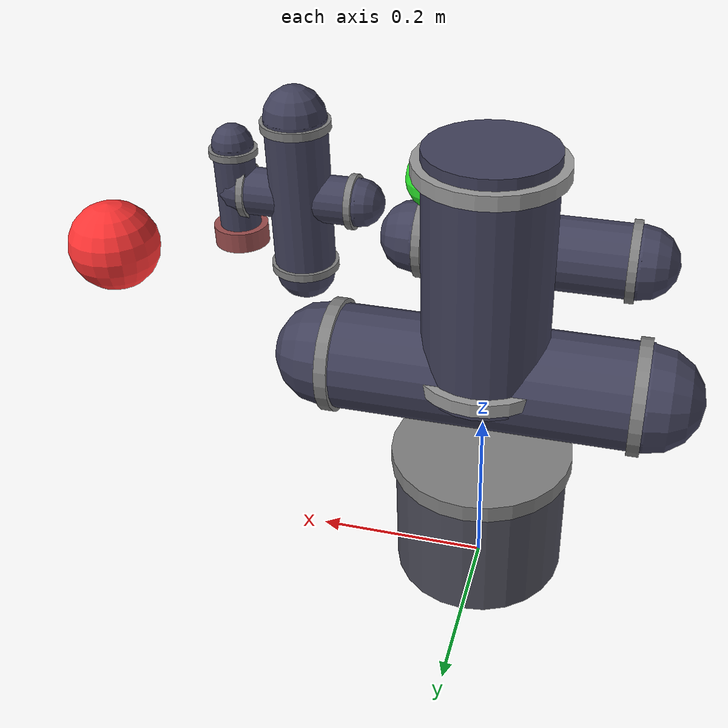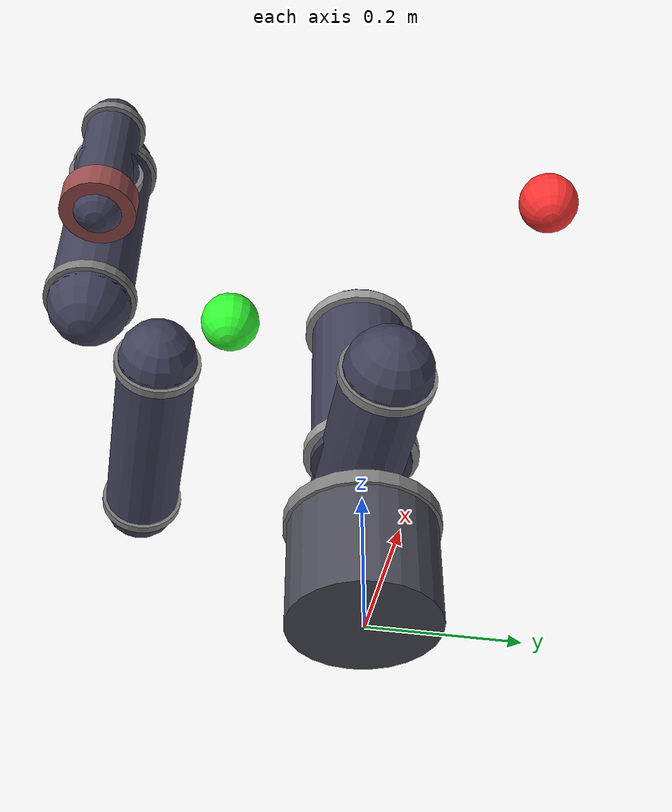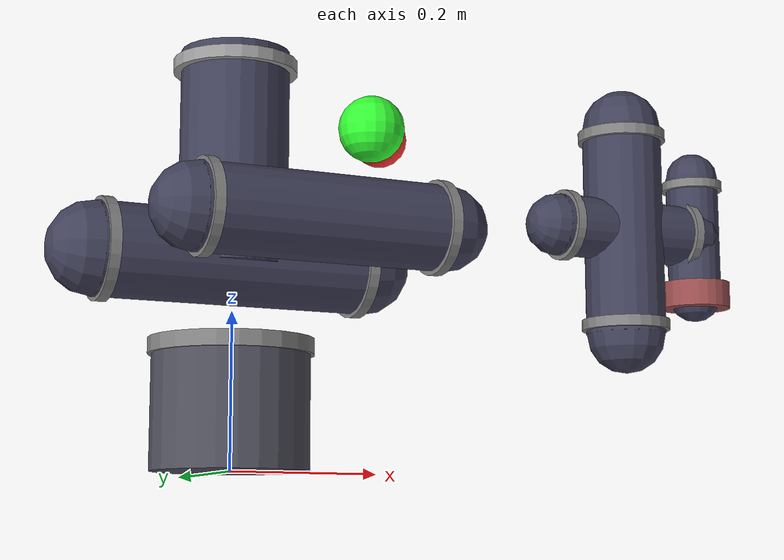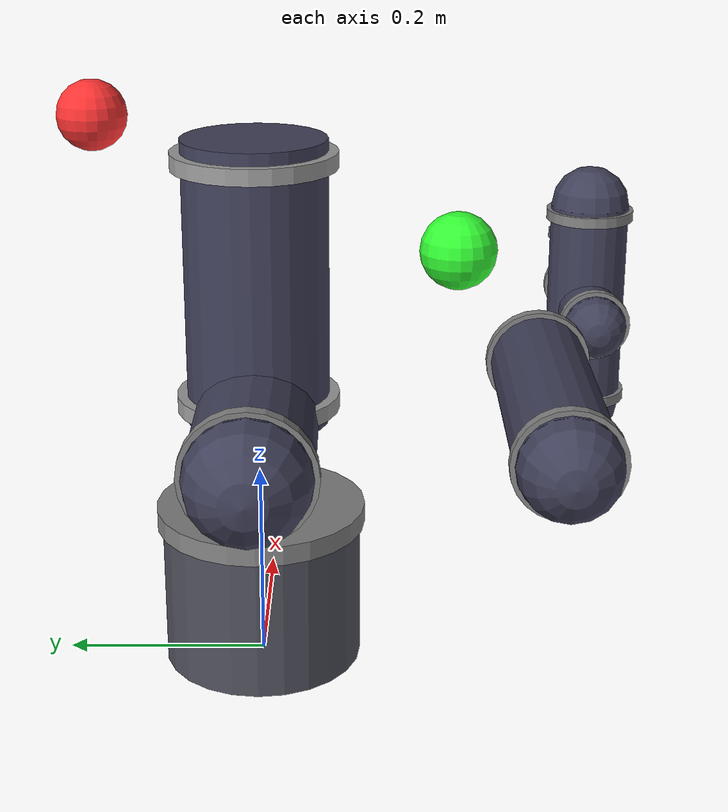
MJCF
<mujoco model="xarm6">
  <compiler angle="radian"/>
  <option gravity="0 0 -9.81" timestep="0.002"/>
  <default>
    <joint limited="true" damping="2"/>
    <position ctrllimited="true" forcerange="-50 50" kp="500"/>
  </default>
  <worldbody>
    <camera name="fixed" pos="1.2 0 1.0" xyaxes="-1 0 0 0 -0.5 1"/>
    <!-- Two colored markers (mocap bodies, repositionable) -->
    <body name="marker_red" mocap="true" pos="0.3 0.2 0.5">
      <geom type="sphere" size="0.04" rgba="1 0.2 0.2 1" contype="0" conaffinity="0"/>
    </body>
    <body name="marker_green" mocap="true" pos="0.1 -0.2 0.4">
      <geom type="sphere" size="0.04" rgba="0.2 1 0.2 1" contype="0" conaffinity="0"/>
    </body>
    <body name="base" pos="0 0 0">
      <geom type="cylinder" size="0.10 0.08" pos="0 0 0.08" rgba="0.3 0.3 0.35 1"/>
      <geom type="cylinder" size="0.105 0.01" pos="0 0 0.155" rgba="0.5 0.5 0.5 1" contype="0" conaffinity="0"/>
        <body name="j1_rotor" pos="0 0 0">
          <joint name="joint1" type="hinge" axis="0 0 1" range="-6.2832 6.2832"/>
          <body name="link1" pos="0.000000 0.000000 0.267000" euler="-0.000000 0.000000 -0.000000">
            <geom type="cylinder" size="0.07 0.14" pos="0 0 0.13" rgba="0.25 0.25 0.35 1"/>
            <geom type="cylinder" size="0.08 0.008" pos="0 0 0.01" rgba="0.6 0.6 0.6 1" contype="0" conaffinity="0"/>
            <geom type="cylinder" size="0.08 0.008" pos="0 0 0.25" rgba="0.6 0.6 0.6 1" contype="0" conaffinity="0"/>
            <body name="j2_rotor" pos="0 0 0">
              <joint name="joint2" type="hinge" axis="0 0 1" range="-2.2515 2.2515"/>
              <body name="link2" pos="0.000000 0.000000 0.000000" euler="0.000000 1.570796 -1.570796">
                <geom type="capsule" size="0.06 0.18" pos="0 0 0.0" rgba="0.25 0.25 0.35 1"/>
                <geom type="cylinder" size="0.065 0.007" pos="0 0 -0.17" rgba="0.5 0.5 0.5 1" contype="0" conaffinity="0"/>
                <geom type="cylinder" size="0.065 0.007" pos="0 0 0.17" rgba="0.5 0.5 0.5 1" contype="0" conaffinity="0"/>
                <body name="j3_rotor" pos="0 0 0">
                  <joint name="joint3" type="hinge" axis="0 0 1" range="-6.2832 6.2832"/>
                  <body name="link3" pos="0.289500 0.000000 0.000000" euler="-0.000000 0.000000 -0.000000">
                    <geom type="capsule" size="0.05 0.15" pos="0 0 0.0" rgba="0.25 0.25 0.35 1"/>
                    <geom type="cylinder" size="0.055 0.006" pos="0 0 -0.14" rgba="0.5 0.5 0.5 1" contype="0" conaffinity="0"/>
                    <geom type="cylinder" size="0.055 0.006" pos="0 0 0.14" rgba="0.5 0.5 0.5 1" contype="0" conaffinity="0"/>
                    <body name="j4_rotor" pos="0 0 0">
                      <joint name="joint4" type="hinge" axis="0 0 1" range="-6.2832 6.2832"/>
                      <body name="link4" pos="0.077500 0.000000 0.342500" euler="-1.570796 0.000000 -0.000000">
                        <geom type="capsule" size="0.045 0.12" pos="0 0 0.0" rgba="0.25 0.25 0.35 1"/>
                        <geom type="cylinder" size="0.05 0.006" pos="0 0 -0.11" rgba="0.5 0.5 0.5 1" contype="0" conaffinity="0"/>
                        <geom type="cylinder" size="0.05 0.006" pos="0 0 0.11" rgba="0.5 0.5 0.5 1" contype="0" conaffinity="0"/>
                        <body name="j5_rotor" pos="0 0 0">
                          <joint name="joint5" type="hinge" axis="0 0 1" range="-6.2832 6.2832"/>
                          <body name="link5" pos="0.000000 0.000000 0.000000" euler="1.570796 0.000000 -0.000000">
                            <geom type="capsule" size="0.035 0.09" pos="0 0 0.0" rgba="0.25 0.25 0.35 1"/>
                            <geom type="cylinder" size="0.04 0.005" pos="0 0 -0.08" rgba="0.5 0.5 0.5 1" contype="0" conaffinity="0"/>
                            <geom type="cylinder" size="0.04 0.005" pos="0 0 0.08" rgba="0.5 0.5 0.5 1" contype="0" conaffinity="0"/>
                            <body name="j6_rotor" pos="0 0 0">
                              <joint name="joint6" type="hinge" axis="0 0 1" range="-6.2832 6.2832"/>
                              <body name="link6" pos="0.000000 0.000000 0.097500" euler="-1.570796 0.000000 -0.000000">
                                <geom type="capsule" size="0.03 0.07" pos="0 0 0.0" rgba="0.25 0.25 0.35 1"/>
                                <geom type="cylinder" size="0.035 0.005" pos="0 0 -0.06" rgba="0.5 0.5 0.5 1" contype="0" conaffinity="0"/>
                                <geom type="cylinder" size="0.04 0.015" pos="0 0 0.07" rgba="0.6 0.3 0.3 1" contype="0" conaffinity="0"/>
                                <site name="ee" pos="0 0 0" size="0.01" rgba="1 0 0 1"/>
                                <camera name="ego" pos="0.05 0 0.03" xyaxes="0 1 0 0 0 1" fovy="60"/>
            </body>
        </body>
                </body>
            </body>
                    </body>
                </body>
                        </body>
                    </body>
                            </body>
                        </body>
                                </body>
                            </body>
    </body>
  </worldbody>
  <actuator>
    <position name="motor1" joint="joint1" ctrlrange="-6.2832 6.2832" kp="500"/>
    <position name="motor2" joint="joint2" ctrlrange="-2.2515 2.2515" kp="500"/>
    <position name="motor3" joint="joint3" ctrlrange="-6.2832 6.2832" kp="500"/>
    <position name="motor4" joint="joint4" ctrlrange="-6.2832 6.2832" kp="500"/>
    <position name="motor5" joint="joint5" ctrlrange="-6.2832 6.2832" kp="500"/>
    <position name="motor6" joint="joint6" ctrlrange="-6.2832 6.2832" kp="500"/>
  </actuator>
</mujoco>
